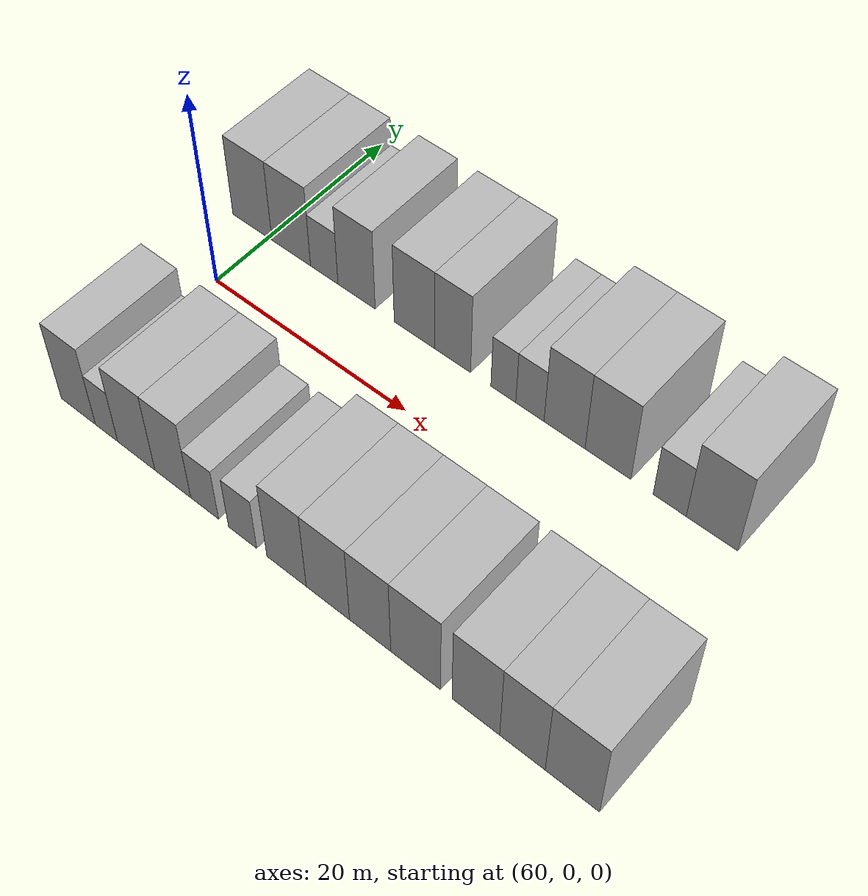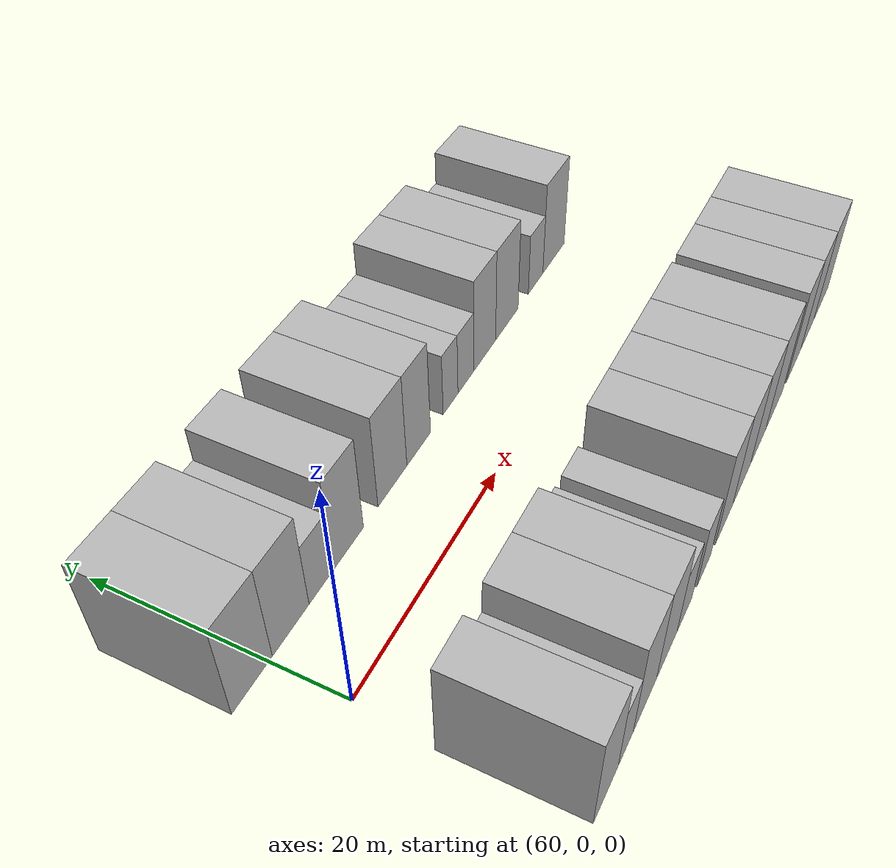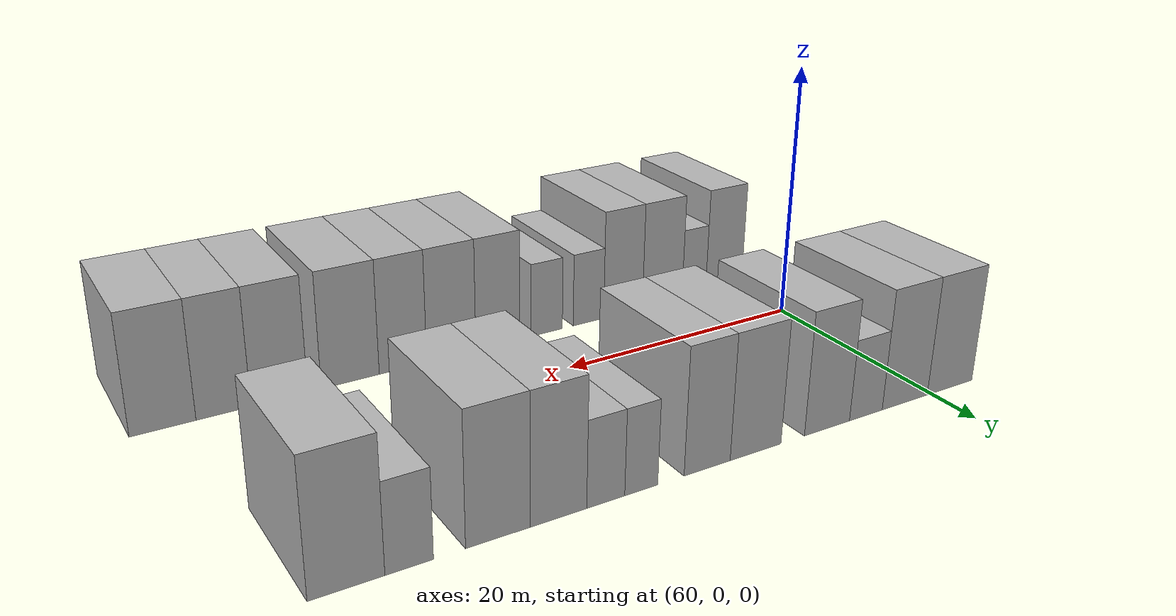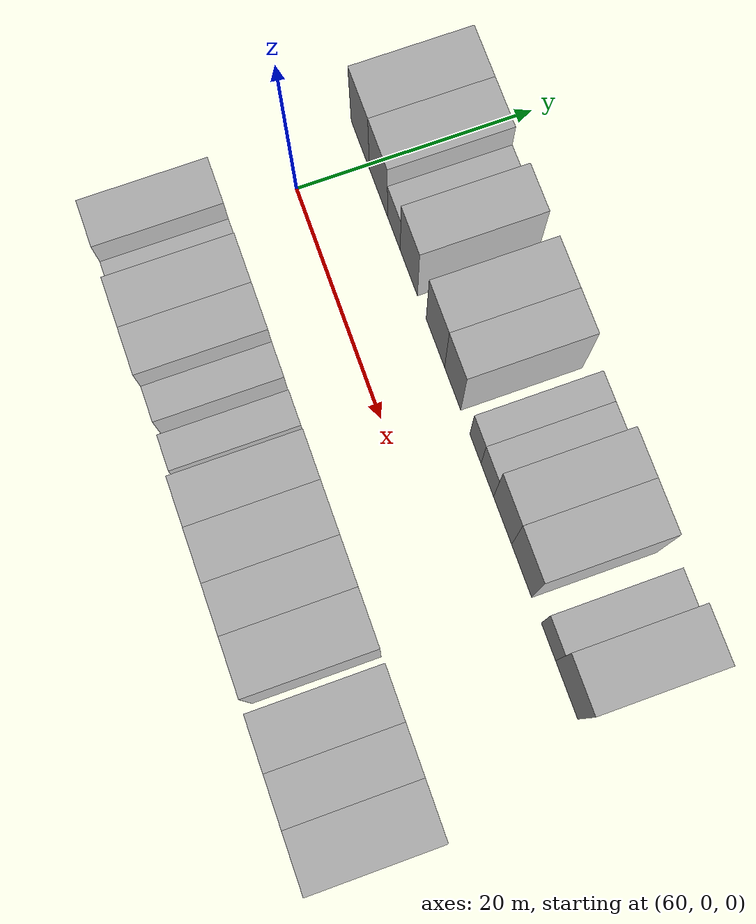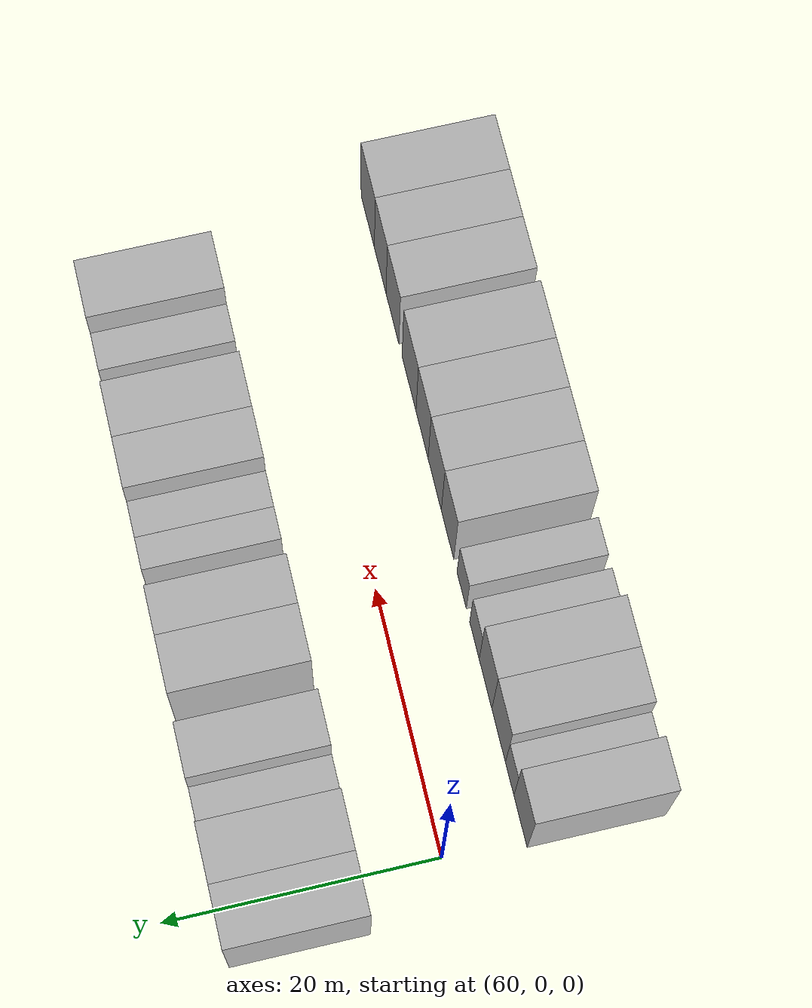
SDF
<sdf version="1.6">
 <world name="default">
  <model name="building_12">
   <static>1</static>
   <pose>58.1856 11.0000 0 0.000000 0.000000 1.570796</pose>
   <link name="link">
    <pose>0 0 4.50 0 0 0</pose>
    <collision name="collision"><geometry><box><size>10.0000 4.4344 9.0000</size></box></geometry></collision>
    <visual name="visual">
     <cast_shadows>0</cast_shadows>
     <geometry><box><size>10.0000 4.4344 9.0000</size></box></geometry>
     <material>
      <script>
       <uri>model://HANNAS_wall/materials/scripts</uri>
       <uri>model://HANNAS_wall/materials/textures</uri>
       <name>vrc/HANNAS_wall</name>
      </script>
     </material>
    </visual>
   </link>
  </model>
  <model name="building_13">
   <static>1</static>
   <pose>62.5479 11.0000 0 0.000000 0.000000 1.570796</pose>
   <link name="link">
    <pose>0 0 4.50 0 0 0</pose>
    <collision name="collision"><geometry><box><size>10.0000 4.2901 9.0000</size></box></geometry></collision>
    <visual name="visual">
     <cast_shadows>0</cast_shadows>
     <geometry><box><size>10.0000 4.2901 9.0000</size></box></geometry>
     <material>
      <script>
       <uri>model://HANNAS_wall/materials/scripts</uri>
       <uri>model://HANNAS_wall/materials/textures</uri>
       <name>vrc/HANNAS_wall</name>
      </script>
     </material>
    </visual>
   </link>
  </model>
  <model name="building_14">
   <static>1</static>
   <pose>66.1876 11.0000 0 0.000000 0.000000 1.570796</pose>
   <link name="link">
    <pose>0 0 3.00 0 0 0</pose>
    <collision name="collision"><geometry><box><size>10.0000 2.9893 6.0000</size></box></geometry></collision>
    <visual name="visual">
     <cast_shadows>0</cast_shadows>
     <geometry><box><size>10.0000 2.9893 6.0000</size></box></geometry>
     <material>
      <script>
       <uri>model://HANNAS_wall/materials/scripts</uri>
       <uri>model://HANNAS_wall/materials/textures</uri>
       <name>vrc/HANNAS_wall</name>
      </script>
     </material>
    </visual>
   </link>
  </model>
  <model name="building_15">
   <static>1</static>
   <pose>69.6649 11.0000 0 0.000000 0.000000 1.570796</pose>
   <link name="link">
    <pose>0 0 4.50 0 0 0</pose>
    <collision name="collision"><geometry><box><size>10.0000 3.9653 9.0000</size></box></geometry></collision>
    <visual name="visual">
     <cast_shadows>0</cast_shadows>
     <geometry><box><size>10.0000 3.9653 9.0000</size></box></geometry>
     <material>
      <script>
       <uri>model://HANNAS_wall/materials/scripts</uri>
       <uri>model://HANNAS_wall/materials/textures</uri>
       <name>vrc/HANNAS_wall</name>
      </script>
     </material>
    </visual>
   </link>
  </model>
  <model name="building_16">
   <static>1</static>
   <pose>75.7314 11.0000 0 0.000000 0.000000 1.570796</pose>
   <link name="link">
    <pose>0 0 4.50 0 0 0</pose>
    <collision name="collision"><geometry><box><size>10.0000 4.1677 9.0000</size></box></geometry></collision>
    <visual name="visual">
     <cast_shadows>0</cast_shadows>
     <geometry><box><size>10.0000 4.1677 9.0000</size></box></geometry>
     <material>
      <script>
       <uri>model://HANNAS_wall/materials/scripts</uri>
       <uri>model://HANNAS_wall/materials/textures</uri>
       <name>vrc/HANNAS_wall</name>
      </script>
     </material>
    </visual>
   </link>
  </model>
  <model name="building_17">
   <static>1</static>
   <pose>79.6209 11.0000 0 0.000000 0.000000 1.570796</pose>
   <link name="link">
    <pose>0 0 4.50 0 0 0</pose>
    <collision name="collision"><geometry><box><size>10.0000 3.6112 9.0000</size></box></geometry></collision>
    <visual name="visual">
     <cast_shadows>0</cast_shadows>
     <geometry><box><size>10.0000 3.6112 9.0000</size></box></geometry>
     <material>
      <script>
       <uri>model://HANNAS_wall/materials/scripts</uri>
       <uri>model://HANNAS_wall/materials/textures</uri>
       <name>vrc/HANNAS_wall</name>
      </script>
     </material>
    </visual>
   </link>
  </model>
  <model name="building_18">
   <static>1</static>
   <pose>84.6441 11.0000 0 0.000000 0.000000 1.570796</pose>
   <link name="link">
    <pose>0 0 3.00 0 0 0</pose>
    <collision name="collision"><geometry><box><size>10.0000 2.4352 6.0000</size></box></geometry></collision>
    <visual name="visual">
     <cast_shadows>0</cast_shadows>
     <geometry><box><size>10.0000 2.4352 6.0000</size></box></geometry>
     <material>
      <script>
       <uri>model://HANNAS_wall/materials/scripts</uri>
       <uri>model://HANNAS_wall/materials/textures</uri>
       <name>vrc/HANNAS_wall</name>
      </script>
     </material>
    </visual>
   </link>
  </model>
  <model name="building_19">
   <static>1</static>
   <pose>87.2198 11.0000 0 0.000000 0.000000 1.570796</pose>
   <link name="link">
    <pose>0 0 3.00 0 0 0</pose>
    <collision name="collision"><geometry><box><size>10.0000 2.7161 6.0000</size></box></geometry></collision>
    <visual name="visual">
     <cast_shadows>0</cast_shadows>
     <geometry><box><size>10.0000 2.7161 6.0000</size></box></geometry>
     <material>
      <script>
       <uri>model://HANNAS_wall/materials/scripts</uri>
       <uri>model://HANNAS_wall/materials/textures</uri>
       <name>vrc/HANNAS_wall</name>
      </script>
     </material>
    </visual>
   </link>
  </model>
  <model name="building_20">
   <static>1</static>
   <pose>90.5099 11.0000 0 0.000000 0.000000 1.570796</pose>
   <link name="link">
    <pose>0 0 4.50 0 0 0</pose>
    <collision name="collision"><geometry><box><size>10.0000 3.8641 9.0000</size></box></geometry></collision>
    <visual name="visual">
     <cast_shadows>0</cast_shadows>
     <geometry><box><size>10.0000 3.8641 9.0000</size></box></geometry>
     <material>
      <script>
       <uri>model://HANNAS_wall/materials/scripts</uri>
       <uri>model://HANNAS_wall/materials/textures</uri>
       <name>vrc/HANNAS_wall</name>
      </script>
     </material>
    </visual>
   </link>
  </model>
  <model name="building_21">
   <static>1</static>
   <pose>94.5507 11.0000 0 0.000000 0.000000 1.570796</pose>
   <link name="link">
    <pose>0 0 4.50 0 0 0</pose>
    <collision name="collision"><geometry><box><size>10.0000 4.2173 9.0000</size></box></geometry></collision>
    <visual name="visual">
     <cast_shadows>0</cast_shadows>
     <geometry><box><size>10.0000 4.2173 9.0000</size></box></geometry>
     <material>
      <script>
       <uri>model://HANNAS_wall/materials/scripts</uri>
       <uri>model://HANNAS_wall/materials/textures</uri>
       <name>vrc/HANNAS_wall</name>
      </script>
     </material>
    </visual>
   </link>
  </model>
  <model name="building_22">
   <static>1</static>
   <pose>100.1274 11.0000 0 0.000000 0.000000 1.570796</pose>
   <link name="link">
    <pose>0 0 3.00 0 0 0</pose>
    <collision name="collision"><geometry><box><size>10.0000 2.9361 6.0000</size></box></geometry></collision>
    <visual name="visual">
     <cast_shadows>0</cast_shadows>
     <geometry><box><size>10.0000 2.9361 6.0000</size></box></geometry>
     <material>
      <script>
       <uri>model://HANNAS_wall/materials/scripts</uri>
       <uri>model://HANNAS_wall/materials/textures</uri>
       <name>vrc/HANNAS_wall</name>
      </script>
     </material>
    </visual>
   </link>
  </model>
  <model name="building_23">
   <static>1</static>
   <pose>103.8333 11.0000 0 0.000000 0.000000 1.570796</pose>
   <link name="link">
    <pose>0 0 4.50 0 0 0</pose>
    <collision name="collision"><geometry><box><size>10.0000 4.4757 9.0000</size></box></geometry></collision>
    <visual name="visual">
     <cast_shadows>0</cast_shadows>
     <geometry><box><size>10.0000 4.4757 9.0000</size></box></geometry>
     <material>
      <script>
       <uri>model://HANNAS_wall/materials/scripts</uri>
       <uri>model://HANNAS_wall/materials/textures</uri>
       <name>vrc/HANNAS_wall</name>
      </script>
     </material>
    </visual>
   </link>
  </model>
  <model name="building_61">
   <static>1</static>
   <pose>61.2550 -11.0000 0 0.000000 0.000000 1.570796</pose>
   <link name="link">
    <pose>0 0 4.50 0 0 0</pose>
    <collision name="collision"><geometry><box><size>10.0000 3.7845 9.0000</size></box></geometry></collision>
    <visual name="visual">
     <cast_shadows>0</cast_shadows>
     <geometry><box><size>10.0000 3.7845 9.0000</size></box></geometry>
     <material>
      <script>
       <uri>model://HANNAS_wall/materials/scripts</uri>
       <uri>model://HANNAS_wall/materials/textures</uri>
       <name>vrc/HANNAS_wall</name>
      </script>
     </material>
    </visual>
   </link>
  </model>
  <model name="building_62">
   <static>1</static>
   <pose>64.3572 -11.0000 0 0.000000 0.000000 1.570796</pose>
   <link name="link">
    <pose>0 0 3.00 0 0 0</pose>
    <collision name="collision"><geometry><box><size>10.0000 2.4199 6.0000</size></box></geometry></collision>
    <visual name="visual">
     <cast_shadows>0</cast_shadows>
     <geometry><box><size>10.0000 2.4199 6.0000</size></box></geometry>
     <material>
      <script>
       <uri>model://HANNAS_wall/materials/scripts</uri>
       <uri>model://HANNAS_wall/materials/textures</uri>
       <name>vrc/HANNAS_wall</name>
      </script>
     </material>
    </visual>
   </link>
  </model>
  <model name="building_63">
   <static>1</static>
   <pose>67.5437 -11.0000 0 0.000000 0.000000 1.570796</pose>
   <link name="link">
    <pose>0 0 4.50 0 0 0</pose>
    <collision name="collision"><geometry><box><size>10.0000 3.9531 9.0000</size></box></geometry></collision>
    <visual name="visual">
     <cast_shadows>0</cast_shadows>
     <geometry><box><size>10.0000 3.9531 9.0000</size></box></geometry>
     <material>
      <script>
       <uri>model://HANNAS_wall/materials/scripts</uri>
       <uri>model://HANNAS_wall/materials/textures</uri>
       <name>vrc/HANNAS_wall</name>
      </script>
     </material>
    </visual>
   </link>
  </model>
  <model name="building_64">
   <static>1</static>
   <pose>71.3882 -11.0000 0 0.000000 0.000000 1.570796</pose>
   <link name="link">
    <pose>0 0 4.50 0 0 0</pose>
    <collision name="collision"><geometry><box><size>10.0000 3.7360 9.0000</size></box></geometry></collision>
    <visual name="visual">
     <cast_shadows>0</cast_shadows>
     <geometry><box><size>10.0000 3.7360 9.0000</size></box></geometry>
     <material>
      <script>
       <uri>model://HANNAS_wall/materials/scripts</uri>
       <uri>model://HANNAS_wall/materials/textures</uri>
       <name>vrc/HANNAS_wall</name>
      </script>
     </material>
    </visual>
   </link>
  </model>
  <model name="building_65">
   <static>1</static>
   <pose>74.6754 -11.0000 0 0.000000 0.000000 1.570796</pose>
   <link name="link">
    <pose>0 0 3.00 0 0 0</pose>
    <collision name="collision"><geometry><box><size>10.0000 2.8383 6.0000</size></box></geometry></collision>
    <visual name="visual">
     <cast_shadows>0</cast_shadows>
     <geometry><box><size>10.0000 2.8383 6.0000</size></box></geometry>
     <material>
      <script>
       <uri>model://HANNAS_wall/materials/scripts</uri>
       <uri>model://HANNAS_wall/materials/textures</uri>
       <name>vrc/HANNAS_wall</name>
      </script>
     </material>
    </visual>
   </link>
  </model>
  <model name="building_66">
   <static>1</static>
   <pose>78.4961 -11.0000 0 0.000000 0.000000 1.570796</pose>
   <link name="link">
    <pose>0 0 3.00 0 0 0</pose>
    <collision name="collision"><geometry><box><size>10.0000 2.8030 6.0000</size></box></geometry></collision>
    <visual name="visual">
     <cast_shadows>0</cast_shadows>
     <geometry><box><size>10.0000 2.8030 6.0000</size></box></geometry>
     <material>
      <script>
       <uri>model://HANNAS_wall/materials/scripts</uri>
       <uri>model://HANNAS_wall/materials/textures</uri>
       <name>vrc/HANNAS_wall</name>
      </script>
     </material>
    </visual>
   </link>
  </model>
  <model name="building_67">
   <static>1</static>
   <pose>82.8006 -11.0000 0 0.000000 0.000000 1.570796</pose>
   <link name="link">
    <pose>0 0 4.50 0 0 0</pose>
    <collision name="collision"><geometry><box><size>10.0000 3.8061 9.0000</size></box></geometry></collision>
    <visual name="visual">
     <cast_shadows>0</cast_shadows>
     <geometry><box><size>10.0000 3.8061 9.0000</size></box></geometry>
     <material>
      <script>
       <uri>model://HANNAS_wall/materials/scripts</uri>
       <uri>model://HANNAS_wall/materials/textures</uri>
       <name>vrc/HANNAS_wall</name>
      </script>
     </material>
    </visual>
   </link>
  </model>
  <model name="building_68">
   <static>1</static>
   <pose>86.7442 -11.0000 0 0.000000 0.000000 1.570796</pose>
   <link name="link">
    <pose>0 0 4.50 0 0 0</pose>
    <collision name="collision"><geometry><box><size>10.0000 4.0811 9.0000</size></box></geometry></collision>
    <visual name="visual">
     <cast_shadows>0</cast_shadows>
     <geometry><box><size>10.0000 4.0811 9.0000</size></box></geometry>
     <material>
      <script>
       <uri>model://HANNAS_wall/materials/scripts</uri>
       <uri>model://HANNAS_wall/materials/textures</uri>
       <name>vrc/HANNAS_wall</name>
      </script>
     </material>
    </visual>
   </link>
  </model>
  <model name="building_69">
   <static>1</static>
   <pose>90.6813 -11.0000 0 0.000000 0.000000 1.570796</pose>
   <link name="link">
    <pose>0 0 4.50 0 0 0</pose>
    <collision name="collision"><geometry><box><size>10.0000 3.7930 9.0000</size></box></geometry></collision>
    <visual name="visual">
     <cast_shadows>0</cast_shadows>
     <geometry><box><size>10.0000 3.7930 9.0000</size></box></geometry>
     <material>
      <script>
       <uri>model://HANNAS_wall/materials/scripts</uri>
       <uri>model://HANNAS_wall/materials/textures</uri>
       <name>vrc/HANNAS_wall</name>
      </script>
     </material>
    </visual>
   </link>
  </model>
  <model name="building_70">
   <static>1</static>
   <pose>94.7972 -11.0000 0 0.000000 0.000000 1.570796</pose>
   <link name="link">
    <pose>0 0 4.50 0 0 0</pose>
    <collision name="collision"><geometry><box><size>10.0000 4.4388 9.0000</size></box></geometry></collision>
    <visual name="visual">
     <cast_shadows>0</cast_shadows>
     <geometry><box><size>10.0000 4.4388 9.0000</size></box></geometry>
     <material>
      <script>
       <uri>model://HANNAS_wall/materials/scripts</uri>
       <uri>model://HANNAS_wall/materials/textures</uri>
       <name>vrc/HANNAS_wall</name>
      </script>
     </material>
    </visual>
   </link>
  </model>
  <model name="building_71">
   <static>1</static>
   <pose>100.0682 -11.0000 0 0.000000 0.000000 1.570796</pose>
   <link name="link">
    <pose>0 0 4.50 0 0 0</pose>
    <collision name="collision"><geometry><box><size>10.0000 4.1031 9.0000</size></box></geometry></collision>
    <visual name="visual">
     <cast_shadows>0</cast_shadows>
     <geometry><box><size>10.0000 4.1031 9.0000</size></box></geometry>
     <material>
      <script>
       <uri>model://HANNAS_wall/materials/scripts</uri>
       <uri>model://HANNAS_wall/materials/textures</uri>
       <name>vrc/HANNAS_wall</name>
      </script>
     </material>
    </visual>
   </link>
  </model>
  <model name="building_72">
   <static>1</static>
   <pose>104.0295 -11.0000 0 0.000000 0.000000 1.570796</pose>
   <link name="link">
    <pose>0 0 4.50 0 0 0</pose>
    <collision name="collision"><geometry><box><size>10.0000 3.8195 9.0000</size></box></geometry></collision>
    <visual name="visual">
     <cast_shadows>0</cast_shadows>
     <geometry><box><size>10.0000 3.8195 9.0000</size></box></geometry>
     <material>
      <script>
       <uri>model://HANNAS_wall/materials/scripts</uri>
       <uri>model://HANNAS_wall/materials/textures</uri>
       <name>vrc/HANNAS_wall</name>
      </script>
     </material>
    </visual>
   </link>
  </model>
  <model name="building_73">
   <static>1</static>
   <pose>108.1590 -11.0000 0 0.000000 0.000000 1.570796</pose>
   <link name="link">
    <pose>0 0 4.50 0 0 0</pose>
    <collision name="collision"><geometry><box><size>10.0000 4.4397 9.0000</size></box></geometry></collision>
    <visual name="visual">
     <cast_shadows>0</cast_shadows>
     <geometry><box><size>10.0000 4.4397 9.0000</size></box></geometry>
     <material>
      <script>
       <uri>model://HANNAS_wall/materials/scripts</uri>
       <uri>model://HANNAS_wall/materials/textures</uri>
       <name>vrc/HANNAS_wall</name>
      </script>
     </material>
    </visual>
   </link>
  </model>
 </world>
</sdf>
